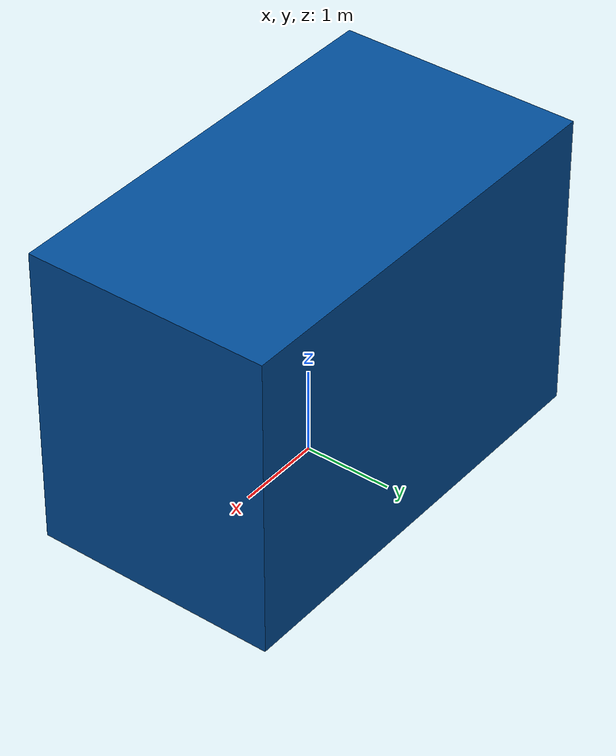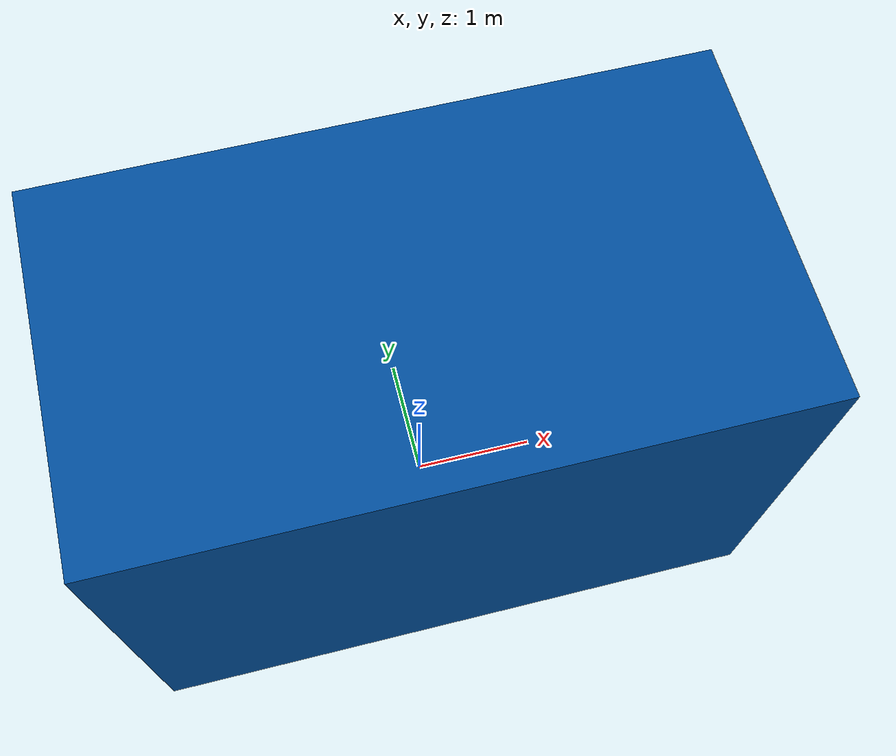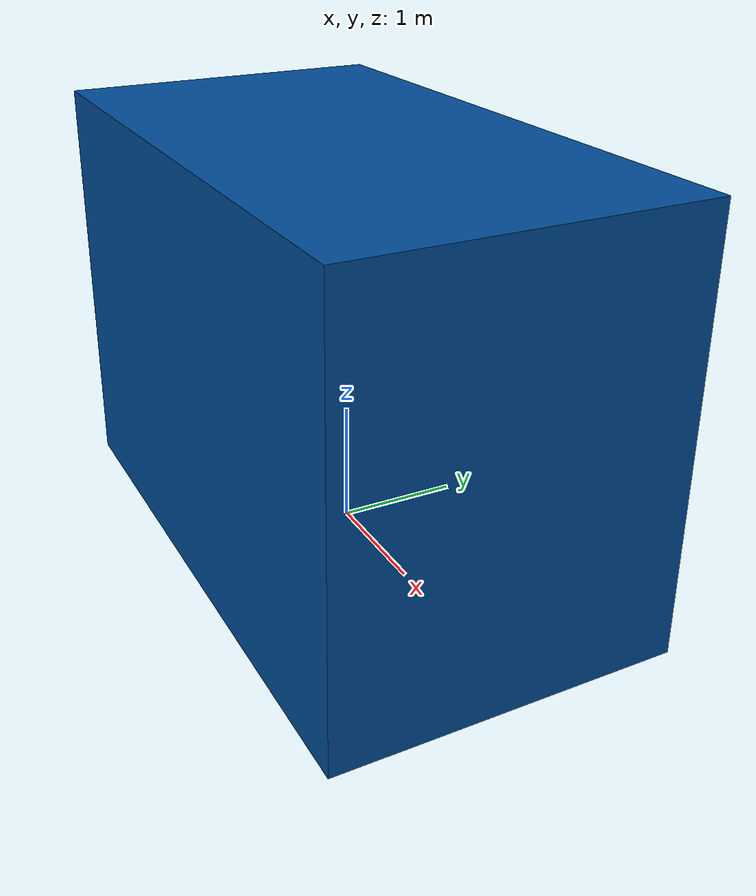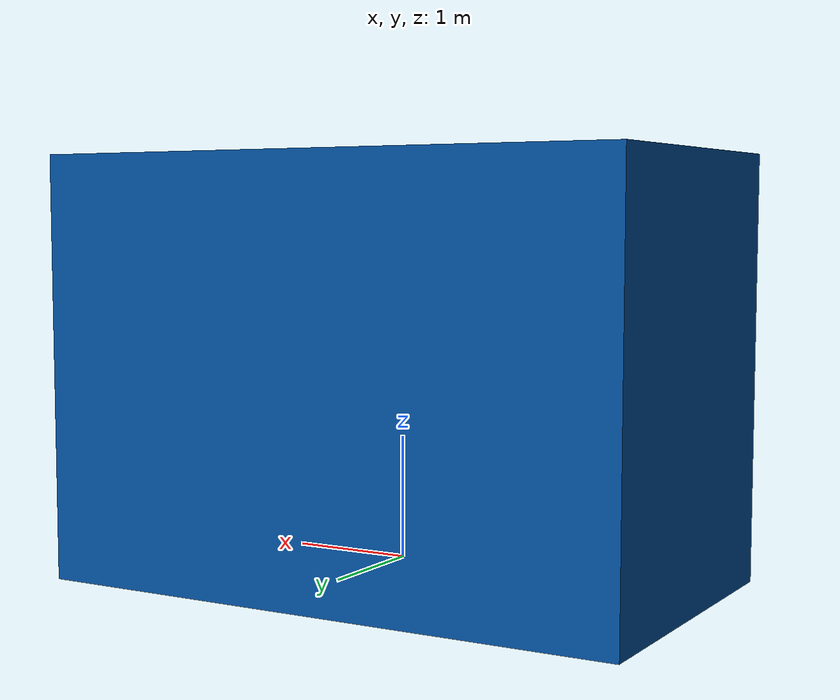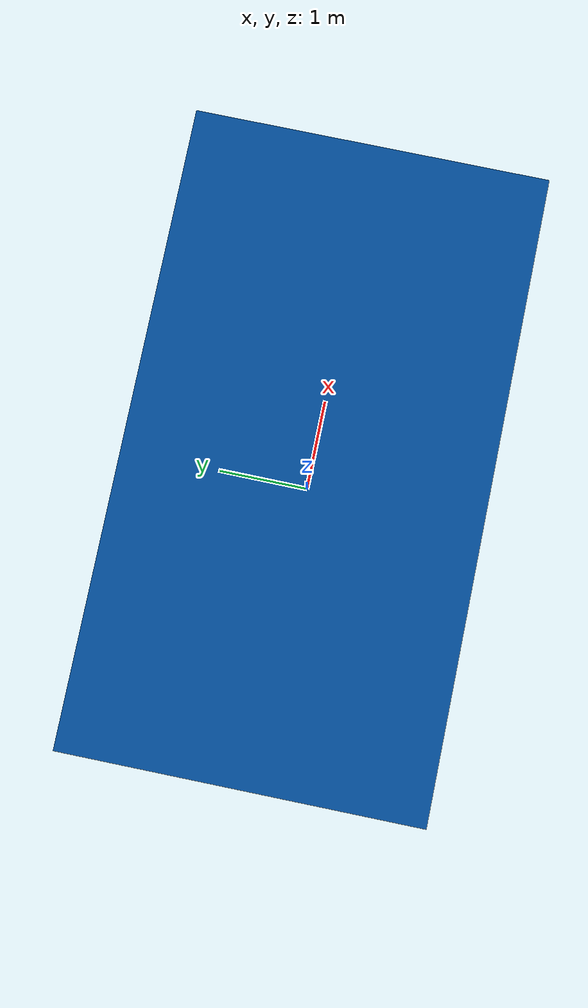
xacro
<?xml version="1.0"?>
<robot xmlns:xacro="http://ros.org/wiki/xacro" name="vessel_prism">
  <!-- prism dims -->
  <xacro:property name="L" value="5.0"/>   <!-- length -->
  <xacro:property name="W" value="2.8"/>   <!-- beam -->
  <xacro:property name="H" value="3.5"/>   <!-- height -->

  <link name="base_link">
  <visual>
    <origin xyz="0 0 ${-0.2 + H/2.0}" rpy="0 0 0"/> // 0.2m = draught
    <geometry>
      <box size="${L} ${W} ${H}"/>
    </geometry>
    <material name="vessel_blue">
      <color rgba="0.0 0.3 0.6 1.0"/>
    </material>
  </visual>
  <collision>
    <origin xyz="0 0 ${-0.2 + H/2.0}" rpy="0 0 0"/>
    <geometry>
      <box size="${L} ${W} ${H}"/>
    </geometry>
  </collision>
</link>
</robot>
